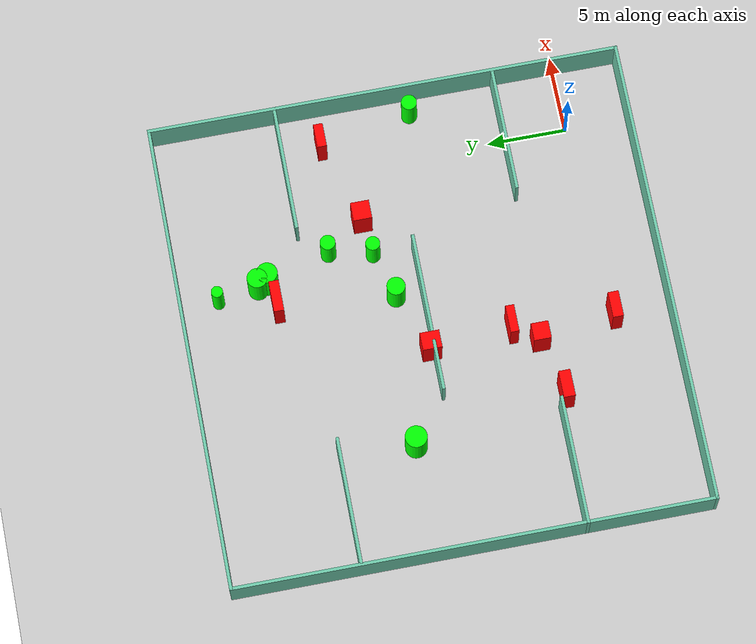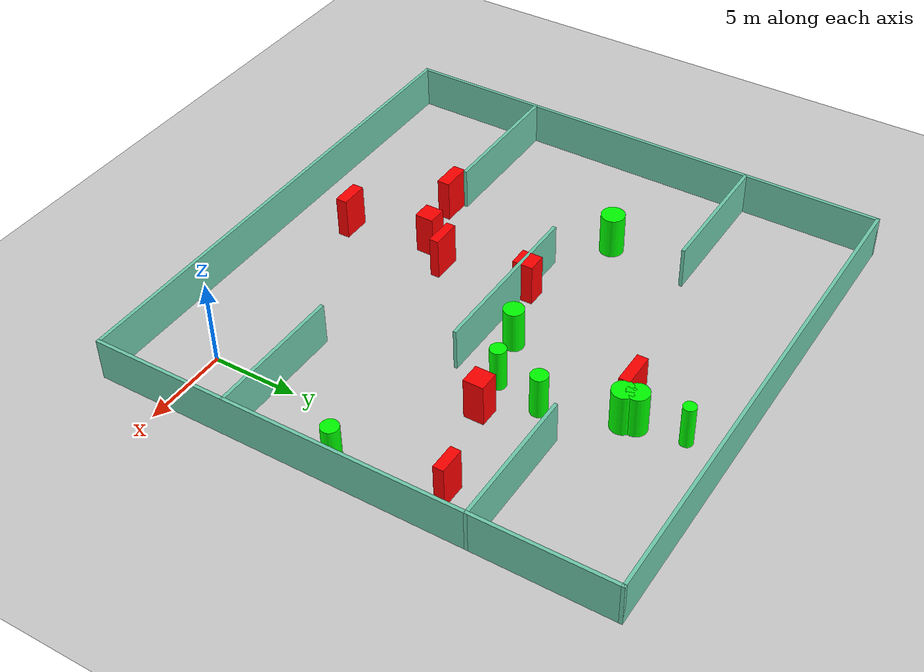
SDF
<sdf version="1.7">
 <world name="default">
  <light name="sun" type="directional">
   <pose>0 0 10 0 -0 0</pose>
   <diffuse>0.8 0.8 0.8 1</diffuse>
   <specular>0.2 0.2 0.2 1</specular>
   <attenuation>
    <range>1000</range>
    <constant>0.9</constant>
    <linear>0.01</linear>
    <quadratic>0.001</quadratic>
   </attenuation>
   <direction>-0.5 0.1 -0.9</direction>
   <spot><inner_angle>0</inner_angle><outer_angle>0</outer_angle><falloff>0</falloff></spot>
  </light>
  <model name="ground_plane">
   <static>1</static>
   <link name="link">
    <collision name="collision">
     <geometry><plane><normal>0 0 1</normal><size>100 100</size></plane></geometry>
     <surface>
      <contact><collide_bitmask>65535</collide_bitmask></contact>
      <friction><ode><mu>100</mu><mu2>50</mu2></ode></friction>
     </surface>
    </collision>
    <visual name="visual">
     <cast_shadows>0</cast_shadows>
     <geometry><plane><normal>0 0 1</normal><size>100 100</size></plane></geometry>
     <material>
      <script><uri>file://media/materials/scripts/gazebo.material</uri><name>Gazebo/Grey</name></script>
     </material>
    </visual>
   </link>
  </model>
  <gravity>0 0 -9.8</gravity>
  <magnetic_field>6e-06 2.3e-05 -4.2e-05</magnetic_field>
  <atmosphere type="adiabatic"/>
  <physics type="ode">
   <max_step_size>0.001</max_step_size>
   <real_time_factor>1</real_time_factor>
   <real_time_update_rate>1000</real_time_update_rate>
  </physics>
  <scene><ambient>0.4 0.4 0.4 1</ambient><background>0.7 0.7 0.7 1</background><shadows>1</shadows></scene>
  <spherical_coordinates>
   <surface_model>EARTH_WGS84</surface_model>
   <latitude_deg>0</latitude_deg>
   <longitude_deg>0</longitude_deg>
   <elevation>0</elevation>
   <heading_deg>0</heading_deg>
  </spherical_coordinates>
  <model name="my_base_walls">
   <link name="Wall_10">
    <collision name="Wall_10_Collision">
     <geometry><box><size>8.2 0.2 2.5</size></box></geometry>
     <pose>0 0 1.25 0 -0 0</pose>
    </collision>
    <visual name="Wall_10_Visual">
     <pose>0 0 1.25 0 -0 0</pose>
     <geometry><box><size>8.2 0.2 2.5</size></box></geometry>
     <material>
      <script><uri>file://media/materials/scripts/gazebo.material</uri><name>Gazebo/Grey</name></script>
      <ambient>0.435294 0.796078 0.67451 1</ambient>
     </material>
     <meta><layer>0</layer></meta>
    </visual>
    <pose>-11 -7 0 0 -0 0</pose>
   </link>
   <link name="Wall_12">
    <collision name="Wall_12_Collision">
     <geometry><box><size>8.2 0.2 2.5</size></box></geometry>
     <pose>0 0 1.25 0 -0 0</pose>
    </collision>
    <visual name="Wall_12_Visual">
     <pose>0 0 1.25 0 -0 0</pose>
     <geometry><box><size>8.2 0.2 2.5</size></box></geometry>
     <material>
      <script><uri>file://media/materials/scripts/gazebo.material</uri><name>Gazebo/Grey</name></script>
      <ambient>0.435294 0.796078 0.67451 1</ambient>
     </material>
     <meta><layer>0</layer></meta>
    </visual>
    <pose>-11 7 0 0 -0 0</pose>
   </link>
   <link name="Wall_14">
    <collision name="Wall_14_Collision">
     <geometry><box><size>8.2 0.2 2.5</size></box></geometry>
     <pose>0 0 1.25 0 -0 0</pose>
    </collision>
    <visual name="Wall_14_Visual">
     <pose>0 0 1.25 0 -0 0</pose>
     <geometry><box><size>8.2 0.2 2.5</size></box></geometry>
     <material>
      <script><uri>file://media/materials/scripts/gazebo.material</uri><name>Gazebo/Grey</name></script>
      <ambient>0.435294 0.796078 0.67451 1</ambient>
     </material>
     <meta><layer>0</layer></meta>
    </visual>
    <pose>11 7 0 0 -0 3.14159</pose>
   </link>
   <link name="Wall_16">
    <collision name="Wall_16_Collision">
     <geometry><box><size>10.2 0.2 2.5</size></box></geometry>
     <pose>0 0 1.25 0 -0 0</pose>
    </collision>
    <visual name="Wall_16_Visual">
     <pose>0 0 1.25 0 -0 0</pose>
     <geometry><box><size>10.2 0.2 2.5</size></box></geometry>
     <material>
      <script><uri>file://media/materials/scripts/gazebo.material</uri><name>Gazebo/Grey</name></script>
      <ambient>0.435294 0.796078 0.67451 1</ambient>
     </material>
     <meta><layer>0</layer></meta>
    </visual>
    <pose>0 0 0 0 -0 3.14159</pose>
   </link>
   <link name="Wall_2">
    <collision name="Wall_2_Collision">
     <geometry><box><size>30.2 0.2 2.5</size></box></geometry>
     <pose>0 0 1.25 0 -0 0</pose>
    </collision>
    <visual name="Wall_2_Visual">
     <pose>0 0 1.25 0 -0 0</pose>
     <geometry><box><size>30.2 0.2 2.5</size></box></geometry>
     <material>
      <script><uri>file://media/materials/scripts/gazebo.material</uri><name>Gazebo/Grey</name></script>
      <ambient>0.435294 0.796078 0.67451 1</ambient>
     </material>
     <meta><layer>0</layer></meta>
    </visual>
    <pose>0 -15 0 0 -0 3.14159</pose>
   </link>
   <link name="Wall_3">
    <collision name="Wall_3_Collision">
     <geometry><box><size>30.2 0.2 2.5</size></box></geometry>
     <pose>0 0 1.25 0 -0 0</pose>
    </collision>
    <visual name="Wall_3_Visual">
     <pose>0 0 1.25 0 -0 0</pose>
     <geometry><box><size>30.2 0.2 2.5</size></box></geometry>
     <material>
      <script><uri>file://media/materials/scripts/gazebo.material</uri><name>Gazebo/Grey</name></script>
      <ambient>0.435294 0.796078 0.67451 1</ambient>
     </material>
     <meta><layer>0</layer></meta>
    </visual>
    <pose>-15 0 0 0 -0 1.5708</pose>
   </link>
   <link name="Wall_4">
    <collision name="Wall_4_Collision">
     <geometry><box><size>30.2 0.2 2.5</size></box></geometry>
     <pose>0 0 1.25 0 -0 0</pose>
    </collision>
    <visual name="Wall_4_Visual">
     <pose>0 0 1.25 0 -0 0</pose>
     <geometry><box><size>30.2 0.2 2.5</size></box></geometry>
     <material>
      <script><uri>file://media/materials/scripts/gazebo.material</uri><name>Gazebo/Grey</name></script>
      <ambient>0.435294 0.796078 0.67451 1</ambient>
     </material>
     <meta><layer>0</layer></meta>
    </visual>
    <pose>0 15 0 0 -0 0</pose>
   </link>
   <link name="Wall_6">
    <collision name="Wall_6_Collision">
     <geometry><box><size>30.2 0.2 2.5</size></box></geometry>
     <pose>0 0 1.25 0 -0 0</pose>
    </collision>
    <visual name="Wall_6_Visual">
     <pose>0 0 1.25 0 -0 0</pose>
     <geometry><box><size>30.2 0.2 2.5</size></box></geometry>
     <material>
      <script><uri>file://media/materials/scripts/gazebo.material</uri><name>Gazebo/Grey</name></script>
      <ambient>0.435294 0.796078 0.67451 1</ambient>
     </material>
     <meta><layer>0</layer></meta>
    </visual>
    <pose>15 0 0 0 -0 1.5708</pose>
   </link>
   <link name="Wall_8">
    <collision name="Wall_8_Collision">
     <geometry><box><size>8.2 0.2 2.5</size></box></geometry>
     <pose>0 0 1.25 0 -0 0</pose>
    </collision>
    <visual name="Wall_8_Visual">
     <pose>0 0 1.25 0 -0 0</pose>
     <geometry><box><size>8.2 0.2 2.5</size></box></geometry>
     <material>
      <script><uri>file://media/materials/scripts/gazebo.material</uri><name>Gazebo/Grey</name></script>
      <ambient>0.435294 0.796078 0.67451 1</ambient>
     </material>
     <meta><layer>0</layer></meta>
    </visual>
    <pose>11 -7 0 0 -0 3.14159</pose>
   </link>
   <static>1</static>
   <pose>-11 11 0 0 -0 0</pose>
  </model>
  <model name="cylinder1">
   <static>1</static>
   <link name="link">
    <inertial>
     <mass>1</mass>
     <inertia><ixx>0.5</ixx><ixy>0</ixy><ixz>0</ixz><iyy>0.5</iyy><iyz>0</iyz><izz>1</izz></inertia>
    </inertial>
    <collision name="collision">
     <geometry><cylinder><radius>0.49844253101399705</radius><length>2.5</length></cylinder></geometry>
    </collision>
    <visual name="visual">
     <geometry><cylinder><radius>0.49844253101399705</radius><length>2.5</length></cylinder></geometry>
     <material>
      <ambient>0 1 0 1</ambient>
      <diffuse>0 1 0 1</diffuse>
      <specular>0.1 0.1 0.1 1</specular>
      <emissive>0 0 0 0</emissive>
     </material>
    </visual>
   </link>
   <pose>2.814495275915508 9.563507338313277 1.25 0 0 0</pose>
  </model>
  <model name="cylinder2">
   <static>1</static>
   <link name="link">
    <inertial>
     <mass>1</mass>
     <inertia><ixx>0.5</ixx><ixy>0</ixy><ixz>0</ixz><iyy>0.5</iyy><iyz>0</iyz><izz>1</izz></inertia>
    </inertial>
    <collision name="collision">
     <geometry><cylinder><radius>0.637427722456469</radius><length>2.5</length></cylinder></geometry>
    </collision>
    <visual name="visual">
     <geometry><cylinder><radius>0.637427722456469</radius><length>2.5</length></cylinder></geometry>
     <material>
      <ambient>0 1 0 1</ambient>
      <diffuse>0 1 0 1</diffuse>
      <specular>0.1 0.1 0.1 1</specular>
      <emissive>0 0 0 0</emissive>
     </material>
    </visual>
   </link>
   <pose>-6.873653174792244 21.009213612948212 1.25 0 0 0</pose>
  </model>
  <model name="cylinder3">
   <static>1</static>
   <link name="link">
    <inertial>
     <mass>1</mass>
     <inertia><ixx>0.5</ixx><ixy>0</ixy><ixz>0</ixz><iyy>0.5</iyy><iyz>0</iyz><izz>1</izz></inertia>
    </inertial>
    <collision name="collision">
     <geometry><cylinder><radius>0.4547746415776004</radius><length>2.5</length></cylinder></geometry>
    </collision>
    <visual name="visual">
     <geometry><cylinder><radius>0.4547746415776004</radius><length>2.5</length></cylinder></geometry>
     <material>
      <ambient>0 1 0 1</ambient>
      <diffuse>0 1 0 1</diffuse>
      <specular>0.1 0.1 0.1 1</specular>
      <emissive>0 0 0 0</emissive>
     </material>
    </visual>
   </link>
   <pose>-5.994477316088066 13.541931824509039 1.25 0 0 0</pose>
  </model>
  <model name="cylinder4">
   <static>1</static>
   <link name="link">
    <inertial>
     <mass>1</mass>
     <inertia><ixx>0.5</ixx><ixy>0</ixy><ixz>0</ixz><iyy>0.5</iyy><iyz>0</iyz><izz>1</izz></inertia>
    </inertial>
    <collision name="collision">
     <geometry><cylinder><radius>0.6950349713490224</radius><length>2.5</length></cylinder></geometry>
    </collision>
    <visual name="visual">
     <geometry><cylinder><radius>0.6950349713490224</radius><length>2.5</length></cylinder></geometry>
     <material>
      <ambient>0 1 0 1</ambient>
      <diffuse>0 1 0 1</diffuse>
      <specular>0.1 0.1 0.1 1</specular>
      <emissive>0 0 0 0</emissive>
     </material>
    </visual>
   </link>
   <pose>-18.769547642718813 13.23829893137286 1.25 0 0 0</pose>
  </model>
  <model name="cylinder5">
   <static>1</static>
   <link name="link">
    <inertial>
     <mass>1</mass>
     <inertia><ixx>0.5</ixx><ixy>0</ixy><ixz>0</ixz><iyy>0.5</iyy><iyz>0</iyz><izz>1</izz></inertia>
    </inertial>
    <collision name="collision">
     <geometry><cylinder><radius>0.5847021015064329</radius><length>2.5</length></cylinder></geometry>
    </collision>
    <visual name="visual">
     <geometry><cylinder><radius>0.5847021015064329</radius><length>2.5</length></cylinder></geometry>
     <material>
      <ambient>0 1 0 1</ambient>
      <diffuse>0 1 0 1</diffuse>
      <specular>0.1 0.1 0.1 1</specular>
      <emissive>0 0 0 0</emissive>
     </material>
    </visual>
   </link>
   <pose>-9.021630882874906 12.645885034613757 1.25 0 0 0</pose>
  </model>
  <model name="cylinder6">
   <static>1</static>
   <link name="link">
    <inertial>
     <mass>1</mass>
     <inertia><ixx>0.5</ixx><ixy>0</ixy><ixz>0</ixz><iyy>0.5</iyy><iyz>0</iyz><izz>1</izz></inertia>
    </inertial>
    <collision name="collision">
     <geometry><cylinder><radius>0.36797937795569463</radius><length>2.5</length></cylinder></geometry>
    </collision>
    <visual name="visual">
     <geometry><cylinder><radius>0.36797937795569463</radius><length>2.5</length></cylinder></geometry>
     <material>
      <ambient>0 1 0 1</ambient>
      <diffuse>0 1 0 1</diffuse>
      <specular>0.1 0.1 0.1 1</specular>
      <emissive>0 0 0 0</emissive>
     </material>
    </visual>
   </link>
   <pose>-7.286339160851835 23.601487128127133 1.25 0 0 0</pose>
  </model>
  <model name="cylinder7">
   <static>1</static>
   <link name="link">
    <inertial>
     <mass>1</mass>
     <inertia><ixx>0.5</ixx><ixy>0</ixy><ixz>0</ixz><iyy>0.5</iyy><iyz>0</iyz><izz>1</izz></inertia>
    </inertial>
    <collision name="collision">
     <geometry><cylinder><radius>0.6650207131220276</radius><length>2.5</length></cylinder></geometry>
    </collision>
    <visual name="visual">
     <geometry><cylinder><radius>0.6650207131220276</radius><length>2.5</length></cylinder></geometry>
     <material>
      <ambient>0 1 0 1</ambient>
      <diffuse>0 1 0 1</diffuse>
      <specular>0.1 0.1 0.1 1</specular>
      <emissive>0 0 0 0</emissive>
     </material>
    </visual>
   </link>
   <pose>-6.653654029557318 20.352329817250528 1.25 0 0 0</pose>
  </model>
  <model name="cylinder8">
   <static>1</static>
   <link name="link">
    <inertial>
     <mass>1</mass>
     <inertia><ixx>0.5</ixx><ixy>0</ixy><ixz>0</ixz><iyy>0.5</iyy><iyz>0</iyz><izz>1</izz></inertia>
    </inertial>
    <collision name="collision">
     <geometry><cylinder><radius>0.48693679292958847</radius><length>2.5</length></cylinder></geometry>
    </collision>
    <visual name="visual">
     <geometry><cylinder><radius>0.48693679292958847</radius><length>2.5</length></cylinder></geometry>
     <material>
      <ambient>0 1 0 1</ambient>
      <diffuse>0 1 0 1</diffuse>
      <specular>0.1 0.1 0.1 1</specular>
      <emissive>0 0 0 0</emissive>
     </material>
    </visual>
   </link>
   <pose>-5.409560128797555 16.287626234901424 1.25 0 0 0</pose>
  </model>
  <model name="box1">
   <static>1</static>
   <link name="link">
    <inertial>
     <mass>1</mass>
     <inertia><ixx>0.083</ixx><ixy>0</ixy><ixz>0</ixz><iyy>0.083</iyy><iyz>0</iyz><izz>0.083</izz></inertia>
    </inertial>
    <collision name="collision">
     <geometry><box><size>1.7062335409815217 0.7388649971951702 2.5</size></box></geometry>
    </collision>
    <visual name="visual">
     <geometry><box><size>1.7062335409815217 0.7388649971951702 2.5</size></box></geometry>
     <material>
      <ambient>1 0 0 1</ambient>
      <diffuse>1 0 0 1</diffuse>
      <specular>0.1 0.1 0.1 1</specular>
      <emissive>0 0 0 0</emissive>
     </material>
    </visual>
    <sensor name="my_contact" type="contact">
     <contact><collision>box_collision</collision><topic>__default_topic__</topic></contact>
    </sensor>
   </link>
   <pose>-17.187185227999183 3.5086236037103715 1.25 0 0 0</pose>
  </model>
  <model name="box2">
   <static>1</static>
   <link name="link">
    <inertial>
     <mass>1</mass>
     <inertia><ixx>0.083</ixx><ixy>0</ixy><ixz>0</ixz><iyy>0.083</iyy><iyz>0</iyz><izz>0.083</izz></inertia>
    </inertial>
    <collision name="collision">
     <geometry><box><size>1.1902060633204372 1.178200250318789 2.5</size></box></geometry>
    </collision>
    <visual name="visual">
     <geometry><box><size>1.1902060633204372 1.178200250318789 2.5</size></box></geometry>
     <material>
      <ambient>1 0 0 1</ambient>
      <diffuse>1 0 0 1</diffuse>
      <specular>0.1 0.1 0.1 1</specular>
      <emissive>0 0 0 0</emissive>
     </material>
    </visual>
    <sensor name="my_contact" type="contact">
     <contact><collision>box_collision</collision><topic>__default_topic__</topic></contact>
    </sensor>
   </link>
   <pose>-3.7218624754723493 13.854336364554253 1.25 0 0 0</pose>
  </model>
  <model name="box3">
   <static>1</static>
   <link name="link">
    <inertial>
     <mass>1</mass>
     <inertia><ixx>0.083</ixx><ixy>0</ixy><ixz>0</ixz><iyy>0.083</iyy><iyz>0</iyz><izz>0.083</izz></inertia>
    </inertial>
    <collision name="collision">
     <geometry><box><size>1.9959165729275954 0.6378139135338718 2.5</size></box></geometry>
    </collision>
    <visual name="visual">
     <geometry><box><size>1.9959165729275954 0.6378139135338718 2.5</size></box></geometry>
     <material>
      <ambient>1 0 0 1</ambient>
      <diffuse>1 0 0 1</diffuse>
      <specular>0.1 0.1 0.1 1</specular>
      <emissive>0 0 0 0</emissive>
     </material>
    </visual>
    <sensor name="my_contact" type="contact">
     <contact><collision>box_collision</collision><topic>__default_topic__</topic></contact>
    </sensor>
   </link>
   <pose>-8.241256040546322 20.041119986442574 1.25 0 0 0</pose>
  </model>
  <model name="box4">
   <static>1</static>
   <link name="link">
    <inertial>
     <mass>1</mass>
     <inertia><ixx>0.083</ixx><ixy>0</ixy><ixz>0</ixz><iyy>0.083</iyy><iyz>0</iyz><izz>0.083</izz></inertia>
    </inertial>
    <collision name="collision">
     <geometry><box><size>1.7377358255880673 0.5437782760569585 2.5</size></box></geometry>
    </collision>
    <visual name="visual">
     <geometry><box><size>1.7377358255880673 0.5437782760569585 2.5</size></box></geometry>
     <material>
      <ambient>1 0 0 1</ambient>
      <diffuse>1 0 0 1</diffuse>
      <specular>0.1 0.1 0.1 1</specular>
      <emissive>0 0 0 0</emissive>
     </material>
    </visual>
    <sensor name="my_contact" type="contact">
     <contact><collision>box_collision</collision><topic>__default_topic__</topic></contact>
    </sensor>
   </link>
   <pose>-12.449176487611233 5.9820592173662295 1.25 0 0 0</pose>
  </model>
  <model name="box5">
   <static>1</static>
   <link name="link">
    <inertial>
     <mass>1</mass>
     <inertia><ixx>0.083</ixx><ixy>0</ixy><ixz>0</ixz><iyy>0.083</iyy><iyz>0</iyz><izz>0.083</izz></inertia>
    </inertial>
    <collision name="collision">
     <geometry><box><size>1.6432390852630363 0.6737357376259485 2.5</size></box></geometry>
    </collision>
    <visual name="visual">
     <geometry><box><size>1.6432390852630363 0.6737357376259485 2.5</size></box></geometry>
     <material>
      <ambient>1 0 0 1</ambient>
      <diffuse>1 0 0 1</diffuse>
      <specular>0.1 0.1 0.1 1</specular>
      <emissive>0 0 0 0</emissive>
     </material>
    </visual>
    <sensor name="my_contact" type="contact">
     <contact><collision>box_collision</collision><topic>__default_topic__</topic></contact>
    </sensor>
   </link>
   <pose>-12.745986991029888 -0.48628312317306754 1.25 0 0 0</pose>
  </model>
  <model name="box6">
   <static>1</static>
   <link name="link">
    <inertial>
     <mass>1</mass>
     <inertia><ixx>0.083</ixx><ixy>0</ixy><ixz>0</ixz><iyy>0.083</iyy><iyz>0</iyz><izz>0.083</izz></inertia>
    </inertial>
    <collision name="collision">
     <geometry><box><size>1.126096585334201 1.2176177355617226 2.5</size></box></geometry>
    </collision>
    <visual name="visual">
     <geometry><box><size>1.126096585334201 1.2176177355617226 2.5</size></box></geometry>
     <material>
      <ambient>1 0 0 1</ambient>
      <diffuse>1 0 0 1</diffuse>
      <specular>0.1 0.1 0.1 1</specular>
      <emissive>0 0 0 0</emissive>
     </material>
    </visual>
    <sensor name="my_contact" type="contact">
     <contact><collision>box_collision</collision><topic>__default_topic__</topic></contact>
    </sensor>
   </link>
   <pose>-12.872451631813249 11.17955700660168 1.25 0 0 0</pose>
  </model>
  <model name="box7">
   <static>1</static>
   <link name="link">
    <inertial>
     <mass>1</mass>
     <inertia><ixx>0.083</ixx><ixy>0</ixy><ixz>0</ixz><iyy>0.083</iyy><iyz>0</iyz><izz>0.083</izz></inertia>
    </inertial>
    <collision name="collision">
     <geometry><box><size>1.114617806729273 1.094521905087447 2.5</size></box></geometry>
    </collision>
    <visual name="visual">
     <geometry><box><size>1.114617806729273 1.094521905087447 2.5</size></box></geometry>
     <material>
      <ambient>1 0 0 1</ambient>
      <diffuse>1 0 0 1</diffuse>
      <specular>0.1 0.1 0.1 1</specular>
      <emissive>0 0 0 0</emissive>
     </material>
    </visual>
    <sensor name="my_contact" type="contact">
     <contact><collision>box_collision</collision><topic>__default_topic__</topic></contact>
    </sensor>
   </link>
   <pose>-13.565414482826462 4.386769679072482 1.25 0 0 0</pose>
  </model>
  <model name="box8">
   <static>1</static>
   <link name="link">
    <inertial>
     <mass>1</mass>
     <inertia><ixx>0.083</ixx><ixy>0</ixy><ixz>0</ixz><iyy>0.083</iyy><iyz>0</iyz><izz>0.083</izz></inertia>
    </inertial>
    <collision name="collision">
     <geometry><box><size>1.5317022071301098 0.6004356646292082 2.5</size></box></geometry>
    </collision>
    <visual name="visual">
     <geometry><box><size>1.5317022071301098 0.6004356646292082 2.5</size></box></geometry>
     <material>
      <ambient>1 0 0 1</ambient>
      <diffuse>1 0 0 1</diffuse>
      <specular>0.1 0.1 0.1 1</specular>
      <emissive>0 0 0 0</emissive>
     </material>
    </visual>
    <sensor name="my_contact" type="contact">
     <contact><collision>box_collision</collision><topic>__default_topic__</topic></contact>
    </sensor>
   </link>
   <pose>1.6938710706838336 15.476482340542574 1.25 0 0 0</pose>
  </model>
 </world>
</sdf>
